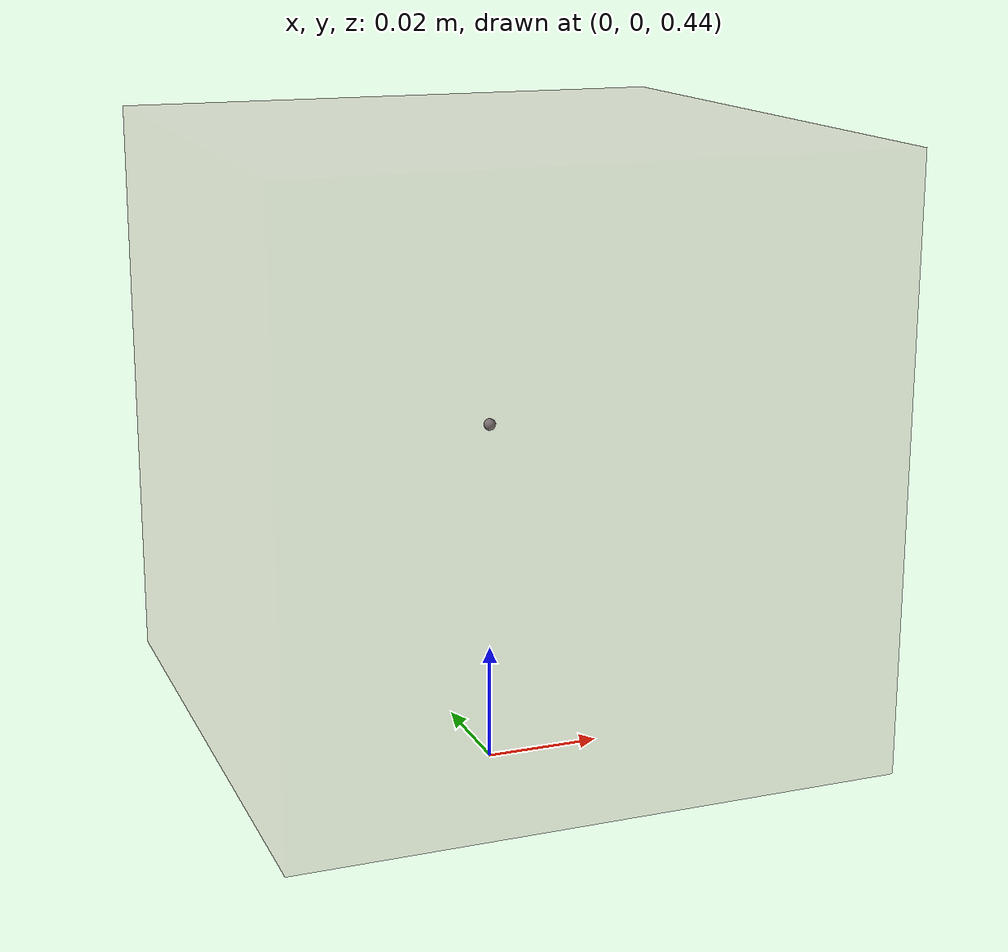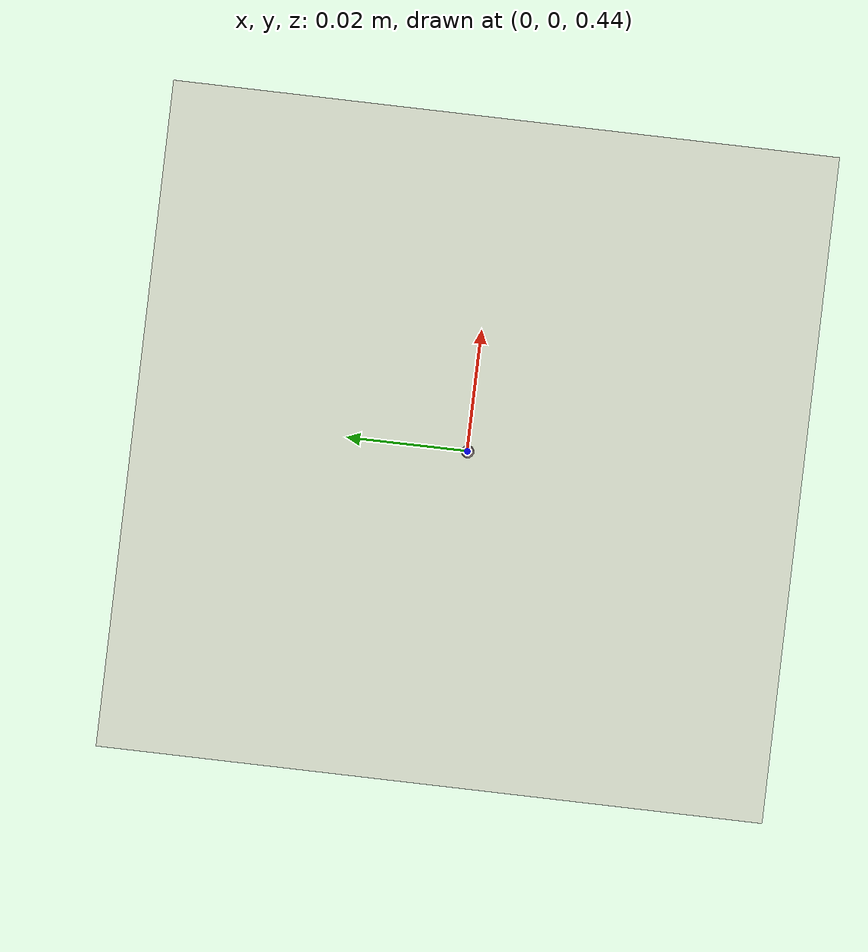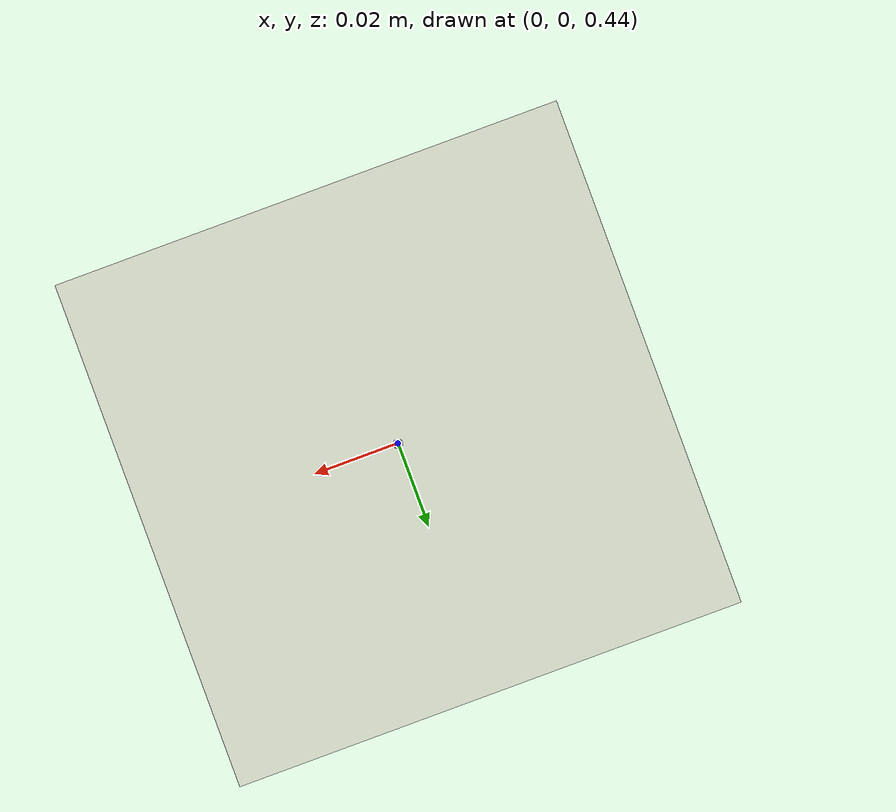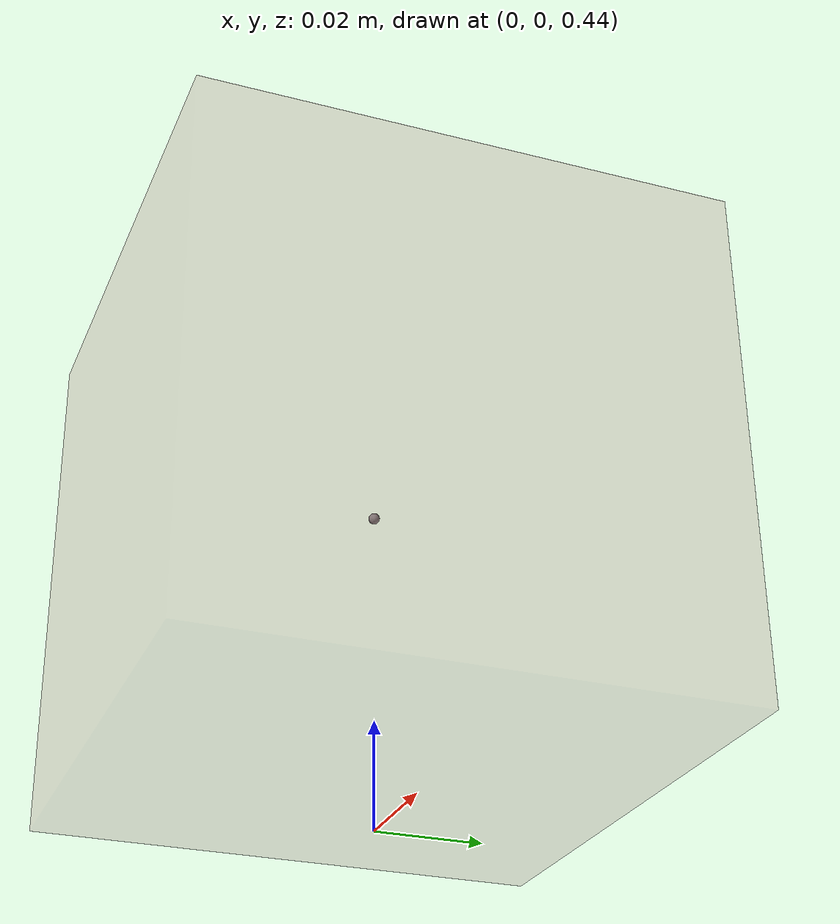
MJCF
<mujoco model="piper_scene">
    <statistic center="0 0 0.1" extent="0.4" />

    <visual>
        <headlight diffuse="0.6 0.6 0.6" ambient="0.3 0.3 0.3" specular="0 0 0" />
        <rgba haze="0.15 0.25 0.35 1" />
        <global azimuth="120" elevation="-20" />
    </visual>

    <asset>
        <texture type="skybox" builtin="gradient" rgb1="0.3 0.5 0.7" rgb2="0 0 0" width="512"
            height="3072" />
        <texture type="2d" name="groundplane" builtin="checker" mark="edge" rgb1="0.2 0.3 0.4"
            rgb2="0.1 0.2 0.3"
            markrgb="0.8 0.8 0.8" width="300" height="300" />
        <material name="groundplane" texture="groundplane" texuniform="true" texrepeat="5 5"
            reflectance="0.2" />
    </asset>

    <worldbody>
        <light pos="0 0 1.5" dir="0 0 -1" directional="true" />
        <geom name="floor" size="0 0 0.05" type="plane" material="groundplane" />
        <body name="pinch_site_target" pos="0.0 0 0.5" quat="1 0 0 0" mocap="true">
            <site name="pinch_site" size="0.001"/>
            <geom type="box" size=".05 .05 .05" contype="0" conaffinity="0" rgba=".6 .3 .3 .2" />
        </body>
    </worldbody>
</mujoco>
